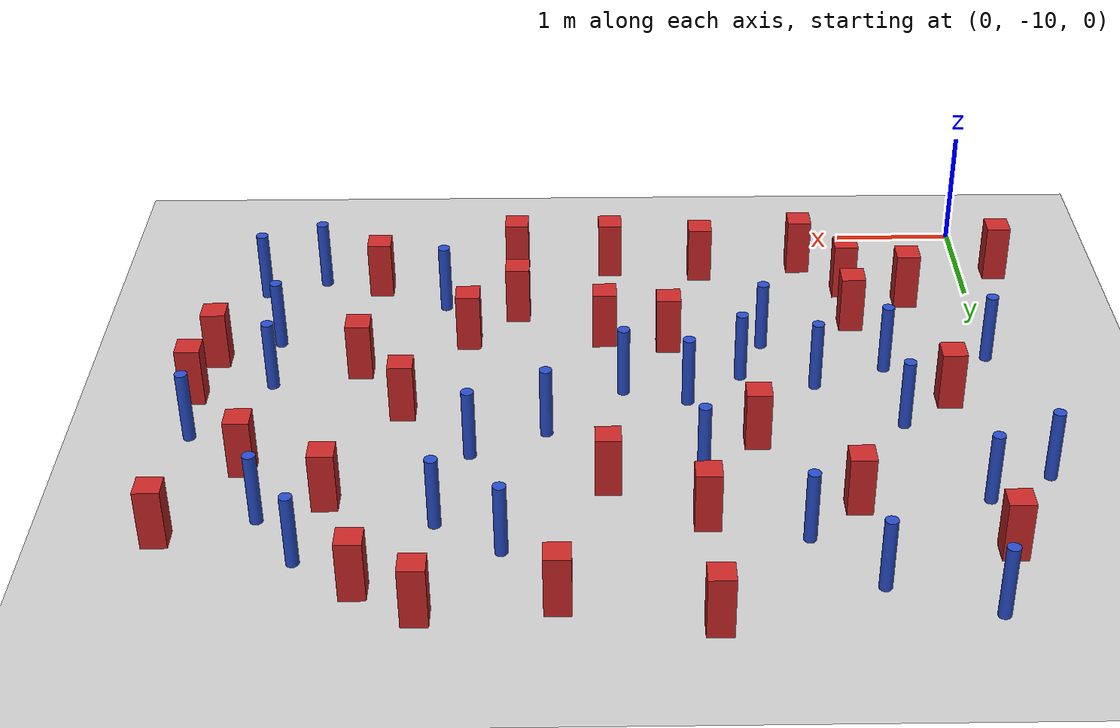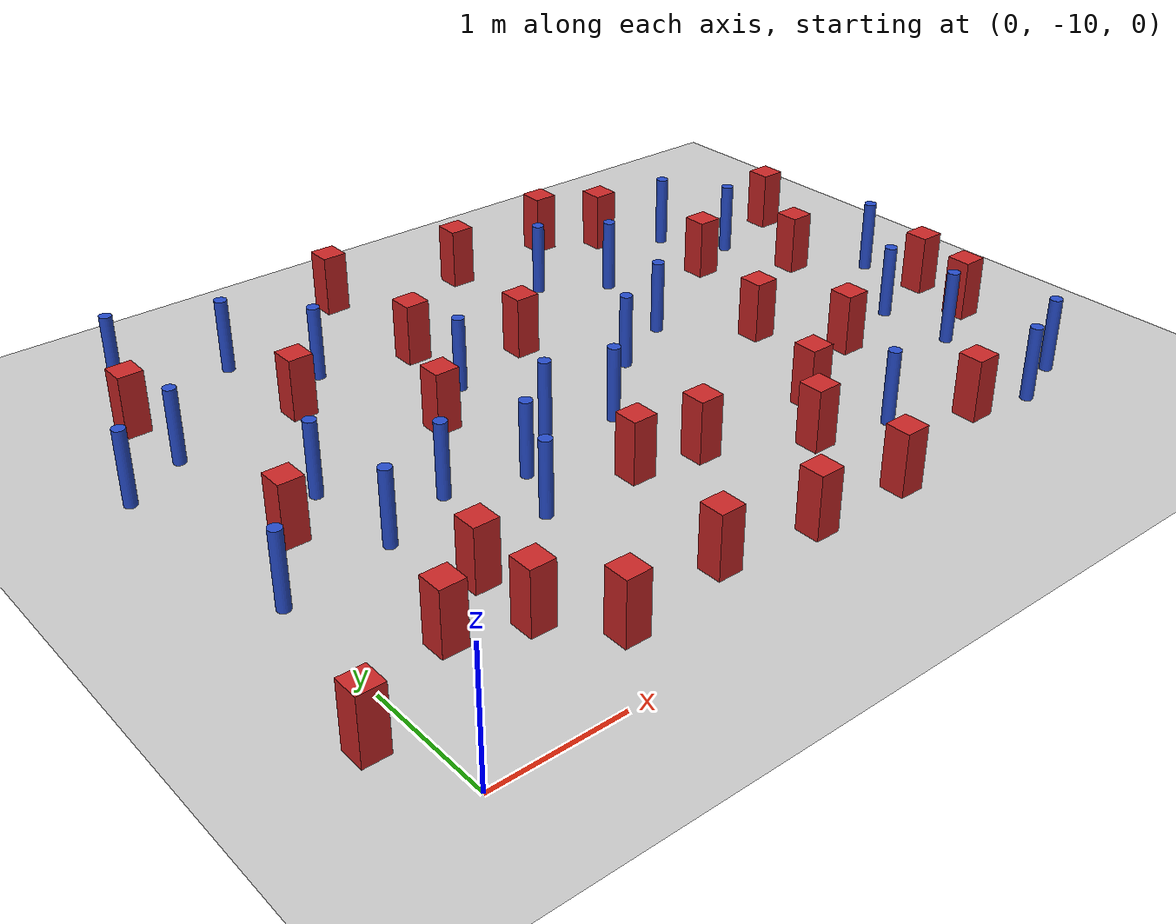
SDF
<sdf version="1.6">
 <world name="default">
  <model name="ground_plane">
   <static>1</static>
   <link name="link">
    <collision name="collision">
     <geometry><plane><normal>0 0 1</normal><size>100 100</size></plane></geometry>
     <surface><friction><ode><mu>100</mu><mu2>50</mu2></ode></friction></surface>
    </collision>
    <visual name="visual">
     <cast_shadows>0</cast_shadows>
     <geometry><plane><normal>0 0 1</normal><size>100 100</size></plane></geometry>
     <material>
      <ambient>1.0 1.0 1.0 1.0</ambient>
      <diffuse>0.8 0.8 0.8 1.0</diffuse>
      <specular>0.01 0.01 0.01 1.000000</specular>
     </material>
    </visual>
   </link>
  </model>
  <model name="square_post_obstacle1">
   <static>true</static>
   <pose>2.44332004762 -5.77742656354 1.91545236811e-07 -7.35059704564e-06 1.12565212e-07 2.39332434364e-05</pose>
   <link name="link">
    <pose>0 0 0.25 0 -0 0</pose>
    <inertial>
     <mass>100</mass>
     <inertia>
      <ixx>0.166667</ixx>
      <ixy>0</ixy>
      <ixz>0</ixz>
      <iyy>0.166667</iyy>
      <iyz>0</iyz>
      <izz>0.166667</izz>
     </inertia>
    </inertial>
    <collision name="collision"><geometry><box><size>.2 .2 .5</size></box></geometry></collision>
    <visual name="visual">
     <geometry><box><size>.2 .2 .5</size></box></geometry>
     <material>
      <script><name>Gazebo/Red</name><uri>file://media/materials/scripts/gazebo.material</uri></script>
     </material>
    </visual>
   </link>
  </model>
  <model name="pole_obstacle2">
   <static>true</static>
   <pose>5.89130835126 -8.27158519056 7.38925637345e-09 -8.471706928e-08 1.24976765081e-08 -1.74513093015e-07</pose>
   <link name="link">
    <pose>0 0 0.3 0 -0 0</pose>
    <inertial>
     <mass>1</mass>
     <inertia><ixx>0.145833</ixx><ixy>0</ixy><ixz>0</ixz><iyy>0.145833</iyy><iyz>0</iyz><izz>0.125</izz></inertia>
    </inertial>
    <collision name="collision">
     <geometry><cylinder><radius>0.05</radius><length>.6</length></cylinder></geometry>
    </collision>
    <visual name="visual">
     <geometry><cylinder><radius>0.05</radius><length>.6</length></cylinder></geometry>
     <material>
      <script><name>Gazebo/Blue</name><uri>file://media/materials/scripts/gazebo.material</uri></script>
     </material>
    </visual>
   </link>
  </model>
  <model name="pole_obstacle10">
   <static>true</static>
   <pose>5.61337096188 -9.26001587438 7.38925637345e-09 -8.471706928e-08 1.24976765081e-08 -1.74513093015e-07</pose>
   <link name="link">
    <pose>0 0 0.3 0 -0 0</pose>
    <inertial>
     <mass>1</mass>
     <inertia><ixx>0.145833</ixx><ixy>0</ixy><ixz>0</ixz><iyy>0.145833</iyy><iyz>0</iyz><izz>0.125</izz></inertia>
    </inertial>
    <collision name="collision">
     <geometry><cylinder><radius>0.05</radius><length>.6</length></cylinder></geometry>
    </collision>
    <visual name="visual">
     <geometry><cylinder><radius>0.05</radius><length>.6</length></cylinder></geometry>
     <material>
      <script><name>Gazebo/Blue</name><uri>file://media/materials/scripts/gazebo.material</uri></script>
     </material>
    </visual>
   </link>
  </model>
  <model name="pole_obstacle13">
   <static>true</static>
   <pose>4.53332814097 -8.83330238117 7.38925637345e-09 -8.471706928e-08 1.24976765081e-08 -1.74513093015e-07</pose>
   <link name="link">
    <pose>0 0 0.3 0 -0 0</pose>
    <inertial>
     <mass>1</mass>
     <inertia><ixx>0.145833</ixx><ixy>0</ixy><ixz>0</ixz><iyy>0.145833</iyy><iyz>0</iyz><izz>0.125</izz></inertia>
    </inertial>
    <collision name="collision">
     <geometry><cylinder><radius>0.05</radius><length>.6</length></cylinder></geometry>
    </collision>
    <visual name="visual">
     <geometry><cylinder><radius>0.05</radius><length>.6</length></cylinder></geometry>
     <material>
      <script><name>Gazebo/Blue</name><uri>file://media/materials/scripts/gazebo.material</uri></script>
     </material>
    </visual>
   </link>
  </model>
  <model name="pole_obstacle17">
   <static>true</static>
   <pose>5.87889555273 -7.64180327104 7.38925637345e-09 -8.47170692796e-08 1.24976764786e-08 -1.74513093032e-07</pose>
   <link name="link">
    <pose>0 0 0.3 0 -0 0</pose>
    <inertial>
     <mass>1</mass>
     <inertia><ixx>0.145833</ixx><ixy>0</ixy><ixz>0</ixz><iyy>0.145833</iyy><iyz>0</iyz><izz>0.125</izz></inertia>
    </inertial>
    <collision name="collision">
     <geometry><cylinder><radius>0.05</radius><length>.6</length></cylinder></geometry>
    </collision>
    <visual name="visual">
     <geometry><cylinder><radius>0.05</radius><length>.6</length></cylinder></geometry>
     <material>
      <script><name>Gazebo/Blue</name><uri>file://media/materials/scripts/gazebo.material</uri></script>
     </material>
    </visual>
   </link>
  </model>
  <model name="square_post_obstacle13">
   <static>true</static>
   <pose>1.07421330765 -9.05741872693 1.91545236811e-07 -7.35059704564e-06 1.12565212e-07 2.39332434364e-05</pose>
   <link name="link">
    <pose>0 0 0.25 0 -0 0</pose>
    <inertial>
     <mass>100</mass>
     <inertia>
      <ixx>0.166667</ixx>
      <ixy>0</ixy>
      <ixz>0</ixz>
      <iyy>0.166667</iyy>
      <iyz>0</iyz>
      <izz>0.166667</izz>
     </inertia>
    </inertial>
    <collision name="collision"><geometry><box><size>.2 .2 .5</size></box></geometry></collision>
    <visual name="visual">
     <geometry><box><size>.2 .2 .5</size></box></geometry>
     <material>
      <script><name>Gazebo/Red</name><uri>file://media/materials/scripts/gazebo.material</uri></script>
     </material>
    </visual>
   </link>
  </model>
  <model name="pole_obstacle26">
   <static>true</static>
   <pose>1.86040906656 -8.18872032764 7.38925637345e-09 -8.47170692798e-08 1.24976764881e-08 -1.74513093027e-07</pose>
   <link name="link">
    <pose>0 0 0.3 0 -0 0</pose>
    <inertial>
     <mass>1</mass>
     <inertia><ixx>0.145833</ixx><ixy>0</ixy><ixz>0</ixz><iyy>0.145833</iyy><iyz>0</iyz><izz>0.125</izz></inertia>
    </inertial>
    <collision name="collision">
     <geometry><cylinder><radius>0.05</radius><length>.6</length></cylinder></geometry>
    </collision>
    <visual name="visual">
     <geometry><cylinder><radius>0.05</radius><length>.6</length></cylinder></geometry>
     <material>
      <script><name>Gazebo/Blue</name><uri>file://media/materials/scripts/gazebo.material</uri></script>
     </material>
    </visual>
   </link>
  </model>
  <model name="square_post_obstacle21">
   <static>true</static>
   <pose>3.11207192009 -9.45377130004 1.91545236811e-07 -7.35059704564e-06 1.12565212e-07 2.39332434364e-05</pose>
   <link name="link">
    <pose>0 0 0.25 0 -0 0</pose>
    <inertial>
     <mass>100</mass>
     <inertia>
      <ixx>0.166667</ixx>
      <ixy>0</ixy>
      <ixz>0</ixz>
      <iyy>0.166667</iyy>
      <iyz>0</iyz>
      <izz>0.166667</izz>
     </inertia>
    </inertial>
    <collision name="collision"><geometry><box><size>.2 .2 .5</size></box></geometry></collision>
    <visual name="visual">
     <geometry><box><size>.2 .2 .5</size></box></geometry>
     <material>
      <script><name>Gazebo/Red</name><uri>file://media/materials/scripts/gazebo.material</uri></script>
     </material>
    </visual>
   </link>
  </model>
  <model name="square_post_obstacle25">
   <static>true</static>
   <pose>6.49063639921 -7.48310181676 1.91545236811e-07 -7.35059704564e-06 1.12565212e-07 2.39332434364e-05</pose>
   <link name="link">
    <pose>0 0 0.25 0 -0 0</pose>
    <inertial>
     <mass>100</mass>
     <inertia>
      <ixx>0.166667</ixx>
      <ixy>0</ixy>
      <ixz>0</ixz>
      <iyy>0.166667</iyy>
      <iyz>0</iyz>
      <izz>0.166667</izz>
     </inertia>
    </inertial>
    <collision name="collision"><geometry><box><size>.2 .2 .5</size></box></geometry></collision>
    <visual name="visual">
     <geometry><box><size>.2 .2 .5</size></box></geometry>
     <material>
      <script><name>Gazebo/Red</name><uri>file://media/materials/scripts/gazebo.material</uri></script>
     </material>
    </visual>
   </link>
  </model>
  <model name="pole_obstacle40">
   <static>true</static>
   <pose>2.06653195669 -7.71471852667 7.38925637345e-09 -8.47170692798e-08 1.24976765033e-08 -1.74513093019e-07</pose>
   <link name="link">
    <pose>0 0 0.3 0 -0 0</pose>
    <inertial>
     <mass>1</mass>
     <inertia><ixx>0.145833</ixx><ixy>0</ixy><ixz>0</ixz><iyy>0.145833</iyy><iyz>0</iyz><izz>0.125</izz></inertia>
    </inertial>
    <collision name="collision">
     <geometry><cylinder><radius>0.05</radius><length>.6</length></cylinder></geometry>
    </collision>
    <visual name="visual">
     <geometry><cylinder><radius>0.05</radius><length>.6</length></cylinder></geometry>
     <material>
      <script><name>Gazebo/Blue</name><uri>file://media/materials/scripts/gazebo.material</uri></script>
     </material>
    </visual>
   </link>
  </model>
  <model name="pole_obstacle42">
   <static>true</static>
   <pose>3.0273202631 -7.51166690474 7.38925637345e-09 -8.47170692798e-08 1.24976765033e-08 -1.74513093019e-07</pose>
   <link name="link">
    <pose>0 0 0.3 0 -0 0</pose>
    <inertial>
     <mass>1</mass>
     <inertia><ixx>0.145833</ixx><ixy>0</ixy><ixz>0</ixz><iyy>0.145833</iyy><iyz>0</iyz><izz>0.125</izz></inertia>
    </inertial>
    <collision name="collision">
     <geometry><cylinder><radius>0.05</radius><length>.6</length></cylinder></geometry>
    </collision>
    <visual name="visual">
     <geometry><cylinder><radius>0.05</radius><length>.6</length></cylinder></geometry>
     <material>
      <script><name>Gazebo/Blue</name><uri>file://media/materials/scripts/gazebo.material</uri></script>
     </material>
    </visual>
   </link>
  </model>
  <model name="square_post_obstacle33">
   <static>true</static>
   <pose>0.250139430183 -5.40766155754 1.91545236811e-07 -7.35059704564e-06 1.12565212e-07 2.39332434364e-05</pose>
   <link name="link">
    <pose>0 0 0.25 0 -0 0</pose>
    <inertial>
     <mass>100</mass>
     <inertia>
      <ixx>0.166667</ixx>
      <ixy>0</ixy>
      <ixz>0</ixz>
      <iyy>0.166667</iyy>
      <iyz>0</iyz>
      <izz>0.166667</izz>
     </inertia>
    </inertial>
    <collision name="collision"><geometry><box><size>.2 .2 .5</size></box></geometry></collision>
    <visual name="visual">
     <geometry><box><size>.2 .2 .5</size></box></geometry>
     <material>
      <script><name>Gazebo/Red</name><uri>file://media/materials/scripts/gazebo.material</uri></script>
     </material>
    </visual>
   </link>
  </model>
  <model name="pole_obstacle54">
   <static>true</static>
   <pose>0.812521267491 -7.00586580138 7.38925637345e-09 -8.471706928e-08 1.24976765086e-08 -1.74513093015e-07</pose>
   <link name="link">
    <pose>0 0 0.3 0 -0 0</pose>
    <inertial>
     <mass>1</mass>
     <inertia><ixx>0.145833</ixx><ixy>0</ixy><ixz>0</ixz><iyy>0.145833</iyy><iyz>0</iyz><izz>0.125</izz></inertia>
    </inertial>
    <collision name="collision">
     <geometry><cylinder><radius>0.05</radius><length>.6</length></cylinder></geometry>
    </collision>
    <visual name="visual">
     <geometry><cylinder><radius>0.05</radius><length>.6</length></cylinder></geometry>
     <material>
      <script><name>Gazebo/Blue</name><uri>file://media/materials/scripts/gazebo.material</uri></script>
     </material>
    </visual>
   </link>
  </model>
  <model name="square_post_obstacle42">
   <static>true</static>
   <pose>2.32215582616 -9.36101462521 1.91545236811e-07 -7.35059704564e-06 1.12565212e-07 2.39332434364e-05</pose>
   <link name="link">
    <pose>0 0 0.25 0 -0 0</pose>
    <inertial>
     <mass>100</mass>
     <inertia>
      <ixx>0.166667</ixx>
      <ixy>0</ixy>
      <ixz>0</ixz>
      <iyy>0.166667</iyy>
      <iyz>0</iyz>
      <izz>0.166667</izz>
     </inertia>
    </inertial>
    <collision name="collision"><geometry><box><size>.2 .2 .5</size></box></geometry></collision>
    <visual name="visual">
     <geometry><box><size>.2 .2 .5</size></box></geometry>
     <material>
      <script><name>Gazebo/Red</name><uri>file://media/materials/scripts/gazebo.material</uri></script>
     </material>
    </visual>
   </link>
  </model>
  <model name="square_post_obstacle48">
   <static>true</static>
   <pose>5.27937939979 -6.06020706355 1.91545236811e-07 -7.35059704564e-06 1.12565212e-07 2.39332434364e-05</pose>
   <link name="link">
    <pose>0 0 0.25 0 -0 0</pose>
    <inertial>
     <mass>100</mass>
     <inertia>
      <ixx>0.166667</ixx>
      <ixy>0</ixy>
      <ixz>0</ixz>
      <iyy>0.166667</iyy>
      <iyz>0</iyz>
      <izz>0.166667</izz>
     </inertia>
    </inertial>
    <collision name="collision"><geometry><box><size>.2 .2 .5</size></box></geometry></collision>
    <visual name="visual">
     <geometry><box><size>.2 .2 .5</size></box></geometry>
     <material>
      <script><name>Gazebo/Red</name><uri>file://media/materials/scripts/gazebo.material</uri></script>
     </material>
    </visual>
   </link>
  </model>
  <model name="pole_obstacle67">
   <static>true</static>
   <pose>2.43581807558 -6.42294973094 7.38925637345e-09 -8.47170692798e-08 1.24976765033e-08 -1.74513093019e-07</pose>
   <link name="link">
    <pose>0 0 0.3 0 -0 0</pose>
    <inertial>
     <mass>1</mass>
     <inertia><ixx>0.145833</ixx><ixy>0</ixy><ixz>0</ixz><iyy>0.145833</iyy><iyz>0</iyz><izz>0.125</izz></inertia>
    </inertial>
    <collision name="collision">
     <geometry><cylinder><radius>0.05</radius><length>.6</length></cylinder></geometry>
    </collision>
    <visual name="visual">
     <geometry><cylinder><radius>0.05</radius><length>.6</length></cylinder></geometry>
     <material>
      <script><name>Gazebo/Blue</name><uri>file://media/materials/scripts/gazebo.material</uri></script>
     </material>
    </visual>
   </link>
  </model>
  <model name="square_post_obstacle52">
   <static>true</static>
   <pose>2.42259912128 -4.6182047108 1.91545236811e-07 -7.35059704564e-06 1.12565212e-07 2.39332434364e-05</pose>
   <link name="link">
    <pose>0 0 0.25 0 -0 0</pose>
    <inertial>
     <mass>100</mass>
     <inertia>
      <ixx>0.166667</ixx>
      <ixy>0</ixy>
      <ixz>0</ixz>
      <iyy>0.166667</iyy>
      <iyz>0</iyz>
      <izz>0.166667</izz>
     </inertia>
    </inertial>
    <collision name="collision"><geometry><box><size>.2 .2 .5</size></box></geometry></collision>
    <visual name="visual">
     <geometry><box><size>.2 .2 .5</size></box></geometry>
     <material>
      <script><name>Gazebo/Red</name><uri>file://media/materials/scripts/gazebo.material</uri></script>
     </material>
    </visual>
   </link>
  </model>
  <model name="square_post_obstacle58">
   <static>true</static>
   <pose>3.53542151933 -4.85251000355 1.91545236811e-07 -7.35059704564e-06 1.12565212e-07 2.39332434364e-05</pose>
   <link name="link">
    <pose>0 0 0.25 0 -0 0</pose>
    <inertial>
     <mass>100</mass>
     <inertia>
      <ixx>0.166667</ixx>
      <ixy>0</ixy>
      <ixz>0</ixz>
      <iyy>0.166667</iyy>
      <iyz>0</iyz>
      <izz>0.166667</izz>
     </inertia>
    </inertial>
    <collision name="collision"><geometry><box><size>.2 .2 .5</size></box></geometry></collision>
    <visual name="visual">
     <geometry><box><size>.2 .2 .5</size></box></geometry>
     <material>
      <script><name>Gazebo/Red</name><uri>file://media/materials/scripts/gazebo.material</uri></script>
     </material>
    </visual>
   </link>
  </model>
  <model name="square_post_obstacle67">
   <static>true</static>
   <pose>1.30555564106 -5.95571007916 1.91545236811e-07 -7.35059704564e-06 1.12565212e-07 2.39332434364e-05</pose>
   <link name="link">
    <pose>0 0 0.25 0 -0 0</pose>
    <inertial>
     <mass>100</mass>
     <inertia>
      <ixx>0.166667</ixx>
      <ixy>0</ixy>
      <ixz>0</ixz>
      <iyy>0.166667</iyy>
      <iyz>0</iyz>
      <izz>0.166667</izz>
     </inertia>
    </inertial>
    <collision name="collision"><geometry><box><size>.2 .2 .5</size></box></geometry></collision>
    <visual name="visual">
     <geometry><box><size>.2 .2 .5</size></box></geometry>
     <material>
      <script><name>Gazebo/Red</name><uri>file://media/materials/scripts/gazebo.material</uri></script>
     </material>
    </visual>
   </link>
  </model>
  <model name="square_post_obstacle71">
   <static>true</static>
   <pose>5.95813016792 -6.49555553379 1.91545236811e-07 -7.35059704564e-06 1.12565212e-07 2.39332434364e-05</pose>
   <link name="link">
    <pose>0 0 0.25 0 -0 0</pose>
    <inertial>
     <mass>100</mass>
     <inertia>
      <ixx>0.166667</ixx>
      <ixy>0</ixy>
      <ixz>0</ixz>
      <iyy>0.166667</iyy>
      <iyz>0</iyz>
      <izz>0.166667</izz>
     </inertia>
    </inertial>
    <collision name="collision"><geometry><box><size>.2 .2 .5</size></box></geometry></collision>
    <visual name="visual">
     <geometry><box><size>.2 .2 .5</size></box></geometry>
     <material>
      <script><name>Gazebo/Red</name><uri>file://media/materials/scripts/gazebo.material</uri></script>
     </material>
    </visual>
   </link>
  </model>
  <model name="square_post_obstacle77">
   <static>true</static>
   <pose>3.1686634257 -6.22431450866 1.91545236811e-07 -7.35059704564e-06 1.12565212e-07 2.39332434364e-05</pose>
   <link name="link">
    <pose>0 0 0.25 0 -0 0</pose>
    <inertial>
     <mass>100</mass>
     <inertia>
      <ixx>0.166667</ixx>
      <ixy>0</ixy>
      <ixz>0</ixz>
      <iyy>0.166667</iyy>
      <iyz>0</iyz>
      <izz>0.166667</izz>
     </inertia>
    </inertial>
    <collision name="collision"><geometry><box><size>.2 .2 .5</size></box></geometry></collision>
    <visual name="visual">
     <geometry><box><size>.2 .2 .5</size></box></geometry>
     <material>
      <script><name>Gazebo/Red</name><uri>file://media/materials/scripts/gazebo.material</uri></script>
     </material>
    </visual>
   </link>
  </model>
  <model name="square_post_obstacle88">
   <static>true</static>
   <pose>1.99874366573 -6.79886530603 1.91545236811e-07 -7.35059704564e-06 1.12565212e-07 2.39332434364e-05</pose>
   <link name="link">
    <pose>0 0 0.25 0 -0 0</pose>
    <inertial>
     <mass>100</mass>
     <inertia>
      <ixx>0.166667</ixx>
      <ixy>0</ixy>
      <ixz>0</ixz>
      <iyy>0.166667</iyy>
      <iyz>0</iyz>
      <izz>0.166667</izz>
     </inertia>
    </inertial>
    <collision name="collision"><geometry><box><size>.2 .2 .5</size></box></geometry></collision>
    <visual name="visual">
     <geometry><box><size>.2 .2 .5</size></box></geometry>
     <material>
      <script><name>Gazebo/Red</name><uri>file://media/materials/scripts/gazebo.material</uri></script>
     </material>
    </visual>
   </link>
  </model>
  <model name="square_post_obstacle94">
   <static>true</static>
   <pose>4.52158592884 -4.74917829867 1.91545236811e-07 -7.35059704564e-06 1.12565212e-07 2.39332434364e-05</pose>
   <link name="link">
    <pose>0 0 0.25 0 -0 0</pose>
    <inertial>
     <mass>100</mass>
     <inertia>
      <ixx>0.166667</ixx>
      <ixy>0</ixy>
      <ixz>0</ixz>
      <iyy>0.166667</iyy>
      <iyz>0</iyz>
      <izz>0.166667</izz>
     </inertia>
    </inertial>
    <collision name="collision"><geometry><box><size>.2 .2 .5</size></box></geometry></collision>
    <visual name="visual">
     <geometry><box><size>.2 .2 .5</size></box></geometry>
     <material>
      <script><name>Gazebo/Red</name><uri>file://media/materials/scripts/gazebo.material</uri></script>
     </material>
    </visual>
   </link>
  </model>
  <model name="square_post_obstacle102">
   <static>true</static>
   <pose>2.64087582578 -8.19251139372 1.91545236811e-07 -7.35059704564e-06 1.12565212e-07 2.39332434364e-05</pose>
   <link name="link">
    <pose>0 0 0.25 0 -0 0</pose>
    <inertial>
     <mass>100</mass>
     <inertia>
      <ixx>0.166667</ixx>
      <ixy>0</ixy>
      <ixz>0</ixz>
      <iyy>0.166667</iyy>
      <iyz>0</iyz>
      <izz>0.166667</izz>
     </inertia>
    </inertial>
    <collision name="collision"><geometry><box><size>.2 .2 .5</size></box></geometry></collision>
    <visual name="visual">
     <geometry><box><size>.2 .2 .5</size></box></geometry>
     <material>
      <script><name>Gazebo/Red</name><uri>file://media/materials/scripts/gazebo.material</uri></script>
     </material>
    </visual>
   </link>
  </model>
  <model name="pole_obstacle114">
   <static>true</static>
   <pose>3.94965584927 -5.46276522362 7.38925637345e-09 -8.47170692798e-08 1.24976765033e-08 -1.74513093019e-07</pose>
   <link name="link">
    <pose>0 0 0.3 0 -0 0</pose>
    <inertial>
     <mass>1</mass>
     <inertia><ixx>0.145833</ixx><ixy>0</ixy><ixz>0</ixz><iyy>0.145833</iyy><iyz>0</iyz><izz>0.125</izz></inertia>
    </inertial>
    <collision name="collision">
     <geometry><cylinder><radius>0.05</radius><length>.6</length></cylinder></geometry>
    </collision>
    <visual name="visual">
     <geometry><cylinder><radius>0.05</radius><length>.6</length></cylinder></geometry>
     <material>
      <script><name>Gazebo/Blue</name><uri>file://media/materials/scripts/gazebo.material</uri></script>
     </material>
    </visual>
   </link>
  </model>
  <model name="square_post_obstacle112">
   <static>true</static>
   <pose>0.411854652274 -7.33695188402 1.91545236811e-07 -7.35059704564e-06 1.12565212e-07 2.39332434364e-05</pose>
   <link name="link">
    <pose>0 0 0.25 0 -0 0</pose>
    <inertial>
     <mass>100</mass>
     <inertia>
      <ixx>0.166667</ixx>
      <ixy>0</ixy>
      <ixz>0</ixz>
      <iyy>0.166667</iyy>
      <iyz>0</iyz>
      <izz>0.166667</izz>
     </inertia>
    </inertial>
    <collision name="collision"><geometry><box><size>.2 .2 .5</size></box></geometry></collision>
    <visual name="visual">
     <geometry><box><size>.2 .2 .5</size></box></geometry>
     <material>
      <script><name>Gazebo/Red</name><uri>file://media/materials/scripts/gazebo.material</uri></script>
     </material>
    </visual>
   </link>
  </model>
  <model name="square_post_obstacle116">
   <static>true</static>
   <pose>-0.29876156868 -9.34951878861 1.91545236811e-07 -7.35059704564e-06 1.12565212e-07 2.39332434364e-05</pose>
   <link name="link">
    <pose>0 0 0.25 0 -0 0</pose>
    <inertial>
     <mass>100</mass>
     <inertia>
      <ixx>0.166667</ixx>
      <ixy>0</ixy>
      <ixz>0</ixz>
      <iyy>0.166667</iyy>
      <iyz>0</iyz>
      <izz>0.166667</izz>
     </inertia>
    </inertial>
    <collision name="collision"><geometry><box><size>.2 .2 .5</size></box></geometry></collision>
    <visual name="visual">
     <geometry><box><size>.2 .2 .5</size></box></geometry>
     <material>
      <script><name>Gazebo/Red</name><uri>file://media/materials/scripts/gazebo.material</uri></script>
     </material>
    </visual>
   </link>
  </model>
  <model name="square_post_obstacle117">
   <static>true</static>
   <pose>3.90605880297 -8.70025038492 1.91545236811e-07 -7.35059704564e-06 1.12565212e-07 2.39332434364e-05</pose>
   <link name="link">
    <pose>0 0 0.25 0 -0 0</pose>
    <inertial>
     <mass>100</mass>
     <inertia>
      <ixx>0.166667</ixx>
      <ixy>0</ixy>
      <ixz>0</ixz>
      <iyy>0.166667</iyy>
      <iyz>0</iyz>
      <izz>0.166667</izz>
     </inertia>
    </inertial>
    <collision name="collision"><geometry><box><size>.2 .2 .5</size></box></geometry></collision>
    <visual name="visual">
     <geometry><box><size>.2 .2 .5</size></box></geometry>
     <material>
      <script><name>Gazebo/Red</name><uri>file://media/materials/scripts/gazebo.material</uri></script>
     </material>
    </visual>
   </link>
  </model>
  <model name="square_post_obstacle120">
   <static>true</static>
   <pose>4.30743001677 -8.26737714747 1.91545236811e-07 -7.35059704564e-06 1.12565212e-07 2.39332434364e-05</pose>
   <link name="link">
    <pose>0 0 0.25 0 -0 0</pose>
    <inertial>
     <mass>100</mass>
     <inertia>
      <ixx>0.166667</ixx>
      <ixy>0</ixy>
      <ixz>0</ixz>
      <iyy>0.166667</iyy>
      <iyz>0</iyz>
      <izz>0.166667</izz>
     </inertia>
    </inertial>
    <collision name="collision"><geometry><box><size>.2 .2 .5</size></box></geometry></collision>
    <visual name="visual">
     <geometry><box><size>.2 .2 .5</size></box></geometry>
     <material>
      <script><name>Gazebo/Red</name><uri>file://media/materials/scripts/gazebo.material</uri></script>
     </material>
    </visual>
   </link>
  </model>
  <model name="pole_obstacle119">
   <static>true</static>
   <pose>1.22640419659 -5.03091344331 7.38925637345e-09 -8.47170692799e-08 1.24976765033e-08 -1.74513093018e-07</pose>
   <link name="link">
    <pose>0 0 0.3 0 -0 0</pose>
    <inertial>
     <mass>1</mass>
     <inertia><ixx>0.145833</ixx><ixy>0</ixy><ixz>0</ixz><iyy>0.145833</iyy><iyz>0</iyz><izz>0.125</izz></inertia>
    </inertial>
    <collision name="collision">
     <geometry><cylinder><radius>0.05</radius><length>.6</length></cylinder></geometry>
    </collision>
    <visual name="visual">
     <geometry><cylinder><radius>0.05</radius><length>.6</length></cylinder></geometry>
     <material>
      <script><name>Gazebo/Blue</name><uri>file://media/materials/scripts/gazebo.material</uri></script>
     </material>
    </visual>
   </link>
  </model>
  <model name="pole_obstacle123">
   <static>true</static>
   <pose>5.44349655192 -5.36108400999 7.38925637345e-09 -8.47170692796e-08 1.24976764786e-08 -1.74513093032e-07</pose>
   <link name="link">
    <pose>0 0 0.3 0 -0 0</pose>
    <inertial>
     <mass>1</mass>
     <inertia><ixx>0.145833</ixx><ixy>0</ixy><ixz>0</ixz><iyy>0.145833</iyy><iyz>0</iyz><izz>0.125</izz></inertia>
    </inertial>
    <collision name="collision">
     <geometry><cylinder><radius>0.05</radius><length>.6</length></cylinder></geometry>
    </collision>
    <visual name="visual">
     <geometry><cylinder><radius>0.05</radius><length>.6</length></cylinder></geometry>
     <material>
      <script><name>Gazebo/Blue</name><uri>file://media/materials/scripts/gazebo.material</uri></script>
     </material>
    </visual>
   </link>
  </model>
  <model name="pole_obstacle126">
   <static>true</static>
   <pose>3.64232898353 -6.93844682564 7.38925637345e-09 -8.47170692798e-08 1.24976765033e-08 -1.74513093019e-07</pose>
   <link name="link">
    <pose>0 0 0.3 0 -0 0</pose>
    <inertial>
     <mass>1</mass>
     <inertia><ixx>0.145833</ixx><ixy>0</ixy><ixz>0</ixz><iyy>0.145833</iyy><iyz>0</iyz><izz>0.125</izz></inertia>
    </inertial>
    <collision name="collision">
     <geometry><cylinder><radius>0.05</radius><length>.6</length></cylinder></geometry>
    </collision>
    <visual name="visual">
     <geometry><cylinder><radius>0.05</radius><length>.6</length></cylinder></geometry>
     <material>
      <script><name>Gazebo/Blue</name><uri>file://media/materials/scripts/gazebo.material</uri></script>
     </material>
    </visual>
   </link>
  </model>
  <model name="square_post_obstacle124">
   <static>true</static>
   <pose>4.78871846745 -7.22456897996 1.91545236811e-07 -7.35059704564e-06 1.12565212e-07 2.39332434364e-05</pose>
   <link name="link">
    <pose>0 0 0.25 0 -0 0</pose>
    <inertial>
     <mass>100</mass>
     <inertia>
      <ixx>0.166667</ixx>
      <ixy>0</ixy>
      <ixz>0</ixz>
      <iyy>0.166667</iyy>
      <iyz>0</iyz>
      <izz>0.166667</izz>
     </inertia>
    </inertial>
    <collision name="collision"><geometry><box><size>.2 .2 .5</size></box></geometry></collision>
    <visual name="visual">
     <geometry><box><size>.2 .2 .5</size></box></geometry>
     <material>
      <script><name>Gazebo/Red</name><uri>file://media/materials/scripts/gazebo.material</uri></script>
     </material>
    </visual>
   </link>
  </model>
  <model name="pole_obstacle129">
   <static>true</static>
   <pose>1.46745900972 -7.57078377712 7.38925637345e-09 -8.47170692799e-08 1.24976765033e-08 -1.74513093018e-07</pose>
   <link name="link">
    <pose>0 0 0.3 0 -0 0</pose>
    <inertial>
     <mass>1</mass>
     <inertia><ixx>0.145833</ixx><ixy>0</ixy><ixz>0</ixz><iyy>0.145833</iyy><iyz>0</iyz><izz>0.125</izz></inertia>
    </inertial>
    <collision name="collision">
     <geometry><cylinder><radius>0.05</radius><length>.6</length></cylinder></geometry>
    </collision>
    <visual name="visual">
     <geometry><cylinder><radius>0.05</radius><length>.6</length></cylinder></geometry>
     <material>
      <script><name>Gazebo/Blue</name><uri>file://media/materials/scripts/gazebo.material</uri></script>
     </material>
    </visual>
   </link>
  </model>
  <model name="pole_obstacle133">
   <static>true</static>
   <pose>6.11123604635 -9.07128024439 7.38925637345e-09 -8.471706928e-08 1.24976765081e-08 -1.74513093015e-07</pose>
   <link name="link">
    <pose>0 0 0.3 0 -0 0</pose>
    <inertial>
     <mass>1</mass>
     <inertia><ixx>0.145833</ixx><ixy>0</ixy><ixz>0</ixz><iyy>0.145833</iyy><iyz>0</iyz><izz>0.125</izz></inertia>
    </inertial>
    <collision name="collision">
     <geometry><cylinder><radius>0.05</radius><length>.6</length></cylinder></geometry>
    </collision>
    <visual name="visual">
     <geometry><cylinder><radius>0.05</radius><length>.6</length></cylinder></geometry>
     <material>
      <script><name>Gazebo/Blue</name><uri>file://media/materials/scripts/gazebo.material</uri></script>
     </material>
    </visual>
   </link>
  </model>
  <model name="square_post_obstacle137">
   <static>true</static>
   <pose>6.46983649495 -5.6431575562 1.91545236811e-07 -7.35059704564e-06 1.12565212e-07 2.39332434364e-05</pose>
   <link name="link">
    <pose>0 0 0.25 0 -0 0</pose>
    <inertial>
     <mass>100</mass>
     <inertia>
      <ixx>0.166667</ixx>
      <ixy>0</ixy>
      <ixz>0</ixz>
      <iyy>0.166667</iyy>
      <iyz>0</iyz>
      <izz>0.166667</izz>
     </inertia>
    </inertial>
    <collision name="collision"><geometry><box><size>.2 .2 .5</size></box></geometry></collision>
    <visual name="visual">
     <geometry><box><size>.2 .2 .5</size></box></geometry>
     <material>
      <script><name>Gazebo/Red</name><uri>file://media/materials/scripts/gazebo.material</uri></script>
     </material>
    </visual>
   </link>
  </model>
  <model name="pole_obstacle144">
   <static>true</static>
   <pose>-0.203947719751 -6.30670873204 7.38925637345e-09 -8.47170692799e-08 1.2497676507e-08 -1.74513093018e-07</pose>
   <link name="link">
    <pose>0 0 0.3 0 -0 0</pose>
    <inertial>
     <mass>1</mass>
     <inertia><ixx>0.145833</ixx><ixy>0</ixy><ixz>0</ixz><iyy>0.145833</iyy><iyz>0</iyz><izz>0.125</izz></inertia>
    </inertial>
    <collision name="collision">
     <geometry><cylinder><radius>0.05</radius><length>.6</length></cylinder></geometry>
    </collision>
    <visual name="visual">
     <geometry><cylinder><radius>0.05</radius><length>.6</length></cylinder></geometry>
     <material>
      <script><name>Gazebo/Blue</name><uri>file://media/materials/scripts/gazebo.material</uri></script>
     </material>
    </visual>
   </link>
  </model>
  <model name="pole_obstacle145">
   <static>true</static>
   <pose>1.70356965938 -5.5818442019 7.38925637345e-09 -8.47170692799e-08 1.24976765033e-08 -1.74513093018e-07</pose>
   <link name="link">
    <pose>0 0 0.3 0 -0 0</pose>
    <inertial>
     <mass>1</mass>
     <inertia><ixx>0.145833</ixx><ixy>0</ixy><ixz>0</ixz><iyy>0.145833</iyy><iyz>0</iyz><izz>0.125</izz></inertia>
    </inertial>
    <collision name="collision">
     <geometry><cylinder><radius>0.05</radius><length>.6</length></cylinder></geometry>
    </collision>
    <visual name="visual">
     <geometry><cylinder><radius>0.05</radius><length>.6</length></cylinder></geometry>
     <material>
      <script><name>Gazebo/Blue</name><uri>file://media/materials/scripts/gazebo.material</uri></script>
     </material>
    </visual>
   </link>
  </model>
  <model name="pole_obstacle152">
   <static>true</static>
   <pose>4.2321710528 -6.6484547192 7.38925637345e-09 -8.47170692796e-08 1.24976764786e-08 -1.74513093032e-07</pose>
   <link name="link">
    <pose>0 0 0.3 0 -0 0</pose>
    <inertial>
     <mass>1</mass>
     <inertia><ixx>0.145833</ixx><ixy>0</ixy><ixz>0</ixz><iyy>0.145833</iyy><iyz>0</iyz><izz>0.125</izz></inertia>
    </inertial>
    <collision name="collision">
     <geometry><cylinder><radius>0.05</radius><length>.6</length></cylinder></geometry>
    </collision>
    <visual name="visual">
     <geometry><cylinder><radius>0.05</radius><length>.6</length></cylinder></geometry>
     <material>
      <script><name>Gazebo/Blue</name><uri>file://media/materials/scripts/gazebo.material</uri></script>
     </material>
    </visual>
   </link>
  </model>
  <model name="square_post_obstacle152">
   <static>true</static>
   <pose>3.92991457035 -9.46814791247 1.91545236811e-07 -7.35059704564e-06 1.12565212e-07 2.39332434364e-05</pose>
   <link name="link">
    <pose>0 0 0.25 0 -0 0</pose>
    <inertial>
     <mass>100</mass>
     <inertia>
      <ixx>0.166667</ixx>
      <ixy>0</ixy>
      <ixz>0</ixz>
      <iyy>0.166667</iyy>
      <iyz>0</iyz>
      <izz>0.166667</izz>
     </inertia>
    </inertial>
    <collision name="collision"><geometry><box><size>.2 .2 .5</size></box></geometry></collision>
    <visual name="visual">
     <geometry><box><size>.2 .2 .5</size></box></geometry>
     <material>
      <script><name>Gazebo/Red</name><uri>file://media/materials/scripts/gazebo.material</uri></script>
     </material>
    </visual>
   </link>
  </model>
  <model name="square_post_obstacle154">
   <static>true</static>
   <pose>5.1112891633 -9.14001642556 1.91545236811e-07 -7.35059704564e-06 1.12565212e-07 2.39332434364e-05</pose>
   <link name="link">
    <pose>0 0 0.25 0 -0 0</pose>
    <inertial>
     <mass>100</mass>
     <inertia>
      <ixx>0.166667</ixx>
      <ixy>0</ixy>
      <ixz>0</ixz>
      <iyy>0.166667</iyy>
      <iyz>0</iyz>
      <izz>0.166667</izz>
     </inertia>
    </inertial>
    <collision name="collision"><geometry><box><size>.2 .2 .5</size></box></geometry></collision>
    <visual name="visual">
     <geometry><box><size>.2 .2 .5</size></box></geometry>
     <material>
      <script><name>Gazebo/Red</name><uri>file://media/materials/scripts/gazebo.material</uri></script>
     </material>
    </visual>
   </link>
  </model>
  <model name="pole_obstacle164">
   <static>true</static>
   <pose>0.440332858112 -4.72355312621 7.38925637345e-09 -8.471706928e-08 1.24976765079e-08 -1.74513093015e-07</pose>
   <link name="link">
    <pose>0 0 0.3 0 -0 0</pose>
    <inertial>
     <mass>1</mass>
     <inertia><ixx>0.145833</ixx><ixy>0</ixy><ixz>0</ixz><iyy>0.145833</iyy><iyz>0</iyz><izz>0.125</izz></inertia>
    </inertial>
    <collision name="collision">
     <geometry><cylinder><radius>0.05</radius><length>.6</length></cylinder></geometry>
    </collision>
    <visual name="visual">
     <geometry><cylinder><radius>0.05</radius><length>.6</length></cylinder></geometry>
     <material>
      <script><name>Gazebo/Blue</name><uri>file://media/materials/scripts/gazebo.material</uri></script>
     </material>
    </visual>
   </link>
  </model>
  <model name="square_post_obstacle157">
   <static>true</static>
   <pose>1.07519510144 -8.50385273176 1.91545236811e-07 -7.35059704564e-06 1.12565212e-07 2.39332434364e-05</pose>
   <link name="link">
    <pose>0 0 0.25 0 -0 0</pose>
    <inertial>
     <mass>100</mass>
     <inertia>
      <ixx>0.166667</ixx>
      <ixy>0</ixy>
      <ixz>0</ixz>
      <iyy>0.166667</iyy>
      <iyz>0</iyz>
      <izz>0.166667</izz>
     </inertia>
    </inertial>
    <collision name="collision"><geometry><box><size>.2 .2 .5</size></box></geometry></collision>
    <visual name="visual">
     <geometry><box><size>.2 .2 .5</size></box></geometry>
     <material>
      <script><name>Gazebo/Red</name><uri>file://media/materials/scripts/gazebo.material</uri></script>
     </material>
    </visual>
   </link>
  </model>
  <model name="pole_obstacle165">
   <static>true</static>
   <pose>0.301638909981 -6.02425453652 7.38925637345e-09 -8.471706928e-08 1.24976765079e-08 -1.74513093015e-07</pose>
   <link name="link">
    <pose>0 0 0.3 0 -0 0</pose>
    <inertial>
     <mass>1</mass>
     <inertia><ixx>0.145833</ixx><ixy>0</ixy><ixz>0</ixz><iyy>0.145833</iyy><iyz>0</iyz><izz>0.125</izz></inertia>
    </inertial>
    <collision name="collision">
     <geometry><cylinder><radius>0.05</radius><length>.6</length></cylinder></geometry>
    </collision>
    <visual name="visual">
     <geometry><cylinder><radius>0.05</radius><length>.6</length></cylinder></geometry>
     <material>
      <script><name>Gazebo/Blue</name><uri>file://media/materials/scripts/gazebo.material</uri></script>
     </material>
    </visual>
   </link>
  </model>
  <model name="square_post_obstacle160">
   <static>true</static>
   <pose>5.17618972998 -7.83115740071 1.91545236811e-07 -7.35059704564e-06 1.12565212e-07 2.39332434364e-05</pose>
   <link name="link">
    <pose>0 0 0.25 0 -0 0</pose>
    <inertial>
     <mass>100</mass>
     <inertia>
      <ixx>0.166667</ixx>
      <ixy>0</ixy>
      <ixz>0</ixz>
      <iyy>0.166667</iyy>
      <iyz>0</iyz>
      <izz>0.166667</izz>
     </inertia>
    </inertial>
    <collision name="collision"><geometry><box><size>.2 .2 .5</size></box></geometry></collision>
    <visual name="visual">
     <geometry><box><size>.2 .2 .5</size></box></geometry>
     <material>
      <script><name>Gazebo/Red</name><uri>file://media/materials/scripts/gazebo.material</uri></script>
     </material>
    </visual>
   </link>
  </model>
  <model name="pole_obstacle166">
   <static>true</static>
   <pose>2.51186749521 -7.357165287 7.38925637345e-09 -8.47170692798e-08 1.24976765033e-08 -1.74513093019e-07</pose>
   <link name="link">
    <pose>0 0 0.3 0 -0 0</pose>
    <inertial>
     <mass>1</mass>
     <inertia><ixx>0.145833</ixx><ixy>0</ixy><ixz>0</ixz><iyy>0.145833</iyy><iyz>0</iyz><izz>0.125</izz></inertia>
    </inertial>
    <collision name="collision">
     <geometry><cylinder><radius>0.05</radius><length>.6</length></cylinder></geometry>
    </collision>
    <visual name="visual">
     <geometry><cylinder><radius>0.05</radius><length>.6</length></cylinder></geometry>
     <material>
      <script><name>Gazebo/Blue</name><uri>file://media/materials/scripts/gazebo.material</uri></script>
     </material>
    </visual>
   </link>
  </model>
  <model name="square_post_obstacle168">
   <static>true</static>
   <pose>3.17239354771 -8.28662848446 1.91545236811e-07 -7.35059704564e-06 1.12565212e-07 2.39332434364e-05</pose>
   <link name="link">
    <pose>0 0 0.25 0 -0 0</pose>
    <inertial>
     <mass>100</mass>
     <inertia>
      <ixx>0.166667</ixx>
      <ixy>0</ixy>
      <ixz>0</ixz>
      <iyy>0.166667</iyy>
      <iyz>0</iyz>
      <izz>0.166667</izz>
     </inertia>
    </inertial>
    <collision name="collision"><geometry><box><size>.2 .2 .5</size></box></geometry></collision>
    <visual name="visual">
     <geometry><box><size>.2 .2 .5</size></box></geometry>
     <material>
      <script><name>Gazebo/Red</name><uri>file://media/materials/scripts/gazebo.material</uri></script>
     </material>
    </visual>
   </link>
  </model>
  <model name="pole_obstacle173">
   <static>true</static>
   <pose>0.00102820438221 -7.96321444761 7.38925637345e-09 -8.47170692799e-08 1.24976765075e-08 -1.74513093016e-07</pose>
   <link name="link">
    <pose>0 0 0.3 0 -0 0</pose>
    <inertial>
     <mass>1</mass>
     <inertia><ixx>0.145833</ixx><ixy>0</ixy><ixz>0</ixz><iyy>0.145833</iyy><iyz>0</iyz><izz>0.125</izz></inertia>
    </inertial>
    <collision name="collision">
     <geometry><cylinder><radius>0.05</radius><length>.6</length></cylinder></geometry>
    </collision>
    <visual name="visual">
     <geometry><cylinder><radius>0.05</radius><length>.6</length></cylinder></geometry>
     <material>
      <script><name>Gazebo/Blue</name><uri>file://media/materials/scripts/gazebo.material</uri></script>
     </material>
    </visual>
   </link>
  </model>
  <model name="square_post_obstacle182">
   <static>true</static>
   <pose>1.43925007769 -9.48813887561 1.91545236811e-07 -7.35059704564e-06 1.12565212e-07 2.39332434364e-05</pose>
   <link name="link">
    <pose>0 0 0.25 0 -0 0</pose>
    <inertial>
     <mass>100</mass>
     <inertia>
      <ixx>0.166667</ixx>
      <ixy>0</ixy>
      <ixz>0</ixz>
      <iyy>0.166667</iyy>
      <iyz>0</iyz>
      <izz>0.166667</izz>
     </inertia>
    </inertial>
    <collision name="collision"><geometry><box><size>.2 .2 .5</size></box></geometry></collision>
    <visual name="visual">
     <geometry><box><size>.2 .2 .5</size></box></geometry>
     <material>
      <script><name>Gazebo/Red</name><uri>file://media/materials/scripts/gazebo.material</uri></script>
     </material>
    </visual>
   </link>
  </model>
  <model name="square_post_obstacle184">
   <static>true</static>
   <pose>4.97623377029 -5.03616782144 1.91545236811e-07 -7.35059704564e-06 1.12565212e-07 2.39332434364e-05</pose>
   <link name="link">
    <pose>0 0 0.25 0 -0 0</pose>
    <inertial>
     <mass>100</mass>
     <inertia>
      <ixx>0.166667</ixx>
      <ixy>0</ixy>
      <ixz>0</ixz>
      <iyy>0.166667</iyy>
      <iyz>0</iyz>
      <izz>0.166667</izz>
     </inertia>
    </inertial>
    <collision name="collision"><geometry><box><size>.2 .2 .5</size></box></geometry></collision>
    <visual name="visual">
     <geometry><box><size>.2 .2 .5</size></box></geometry>
     <material>
      <script><name>Gazebo/Red</name><uri>file://media/materials/scripts/gazebo.material</uri></script>
     </material>
    </visual>
   </link>
  </model>
  <model name="square_post_obstacle185">
   <static>true</static>
   <pose>6.37170045148 -8.02413395523 1.91545236811e-07 -7.35059704564e-06 1.12565212e-07 2.39332434364e-05</pose>
   <link name="link">
    <pose>0 0 0.25 0 -0 0</pose>
    <inertial>
     <mass>100</mass>
     <inertia>
      <ixx>0.166667</ixx>
      <ixy>0</ixy>
      <ixz>0</ixz>
      <iyy>0.166667</iyy>
      <iyz>0</iyz>
      <izz>0.166667</izz>
     </inertia>
    </inertial>
    <collision name="collision"><geometry><box><size>.2 .2 .5</size></box></geometry></collision>
    <visual name="visual">
     <geometry><box><size>.2 .2 .5</size></box></geometry>
     <material>
      <script><name>Gazebo/Red</name><uri>file://media/materials/scripts/gazebo.material</uri></script>
     </material>
    </visual>
   </link>
  </model>
  <model name="square_post_obstacle191">
   <static>true</static>
   <pose>0.559083087291 -8.87914111464 1.91545236811e-07 -7.35059704564e-06 1.12565212e-07 2.39332434364e-05</pose>
   <link name="link">
    <pose>0 0 0.25 0 -0 0</pose>
    <inertial>
     <mass>100</mass>
     <inertia>
      <ixx>0.166667</ixx>
      <ixy>0</ixy>
      <ixz>0</ixz>
      <iyy>0.166667</iyy>
      <iyz>0</iyz>
      <izz>0.166667</izz>
     </inertia>
    </inertial>
    <collision name="collision"><geometry><box><size>.2 .2 .5</size></box></geometry></collision>
    <visual name="visual">
     <geometry><box><size>.2 .2 .5</size></box></geometry>
     <material>
      <script><name>Gazebo/Red</name><uri>file://media/materials/scripts/gazebo.material</uri></script>
     </material>
    </visual>
   </link>
  </model>
  <model name="pole_obstacle187">
   <static>true</static>
   <pose>4.45283870863 -5.78883257904 7.38925637345e-09 -8.47170692796e-08 1.24976764786e-08 -1.74513093032e-07</pose>
   <link name="link">
    <pose>0 0 0.3 0 -0 0</pose>
    <inertial>
     <mass>1</mass>
     <inertia><ixx>0.145833</ixx><ixy>0</ixy><ixz>0</ixz><iyy>0.145833</iyy><iyz>0</iyz><izz>0.125</izz></inertia>
    </inertial>
    <collision name="collision">
     <geometry><cylinder><radius>0.05</radius><length>.6</length></cylinder></geometry>
    </collision>
    <visual name="visual">
     <geometry><cylinder><radius>0.05</radius><length>.6</length></cylinder></geometry>
     <material>
      <script><name>Gazebo/Blue</name><uri>file://media/materials/scripts/gazebo.material</uri></script>
     </material>
    </visual>
   </link>
  </model>
  <model name="pole_obstacle194">
   <static>true</static>
   <pose>6.44349341508 -6.92622271173 7.38925637345e-09 -8.47170692796e-08 1.24976764786e-08 -1.74513093032e-07</pose>
   <link name="link">
    <pose>0 0 0.3 0 -0 0</pose>
    <inertial>
     <mass>1</mass>
     <inertia><ixx>0.145833</ixx><ixy>0</ixy><ixz>0</ixz><iyy>0.145833</iyy><iyz>0</iyz><izz>0.125</izz></inertia>
    </inertial>
    <collision name="collision">
     <geometry><cylinder><radius>0.05</radius><length>.6</length></cylinder></geometry>
    </collision>
    <visual name="visual">
     <geometry><cylinder><radius>0.05</radius><length>.6</length></cylinder></geometry>
     <material>
      <script><name>Gazebo/Blue</name><uri>file://media/materials/scripts/gazebo.material</uri></script>
     </material>
    </visual>
   </link>
  </model>
  <model name="pole_obstacle197">
   <static>true</static>
   <pose>5.77011965514 -5.85660983476 7.38925637345e-09 -8.47170692796e-08 1.24976764786e-08 -1.74513093032e-07</pose>
   <link name="link">
    <pose>0 0 0.3 0 -0 0</pose>
    <inertial>
     <mass>1</mass>
     <inertia><ixx>0.145833</ixx><ixy>0</ixy><ixz>0</ixz><iyy>0.145833</iyy><iyz>0</iyz><izz>0.125</izz></inertia>
    </inertial>
    <collision name="collision">
     <geometry><cylinder><radius>0.05</radius><length>.6</length></cylinder></geometry>
    </collision>
    <visual name="visual">
     <geometry><cylinder><radius>0.05</radius><length>.6</length></cylinder></geometry>
     <material>
      <script><name>Gazebo/Blue</name><uri>file://media/materials/scripts/gazebo.material</uri></script>
     </material>
    </visual>
   </link>
  </model>
  <model name="pole_obstacle204">
   <static>true</static>
   <pose>0.8722585447 -7.81491574121 7.38925637345e-09 -8.471706928e-08 1.24976765086e-08 -1.74513093015e-07</pose>
   <link name="link">
    <pose>0 0 0.3 0 -0 0</pose>
    <inertial>
     <mass>1</mass>
     <inertia><ixx>0.145833</ixx><ixy>0</ixy><ixz>0</ixz><iyy>0.145833</iyy><iyz>0</iyz><izz>0.125</izz></inertia>
    </inertial>
    <collision name="collision">
     <geometry><cylinder><radius>0.05</radius><length>.6</length></cylinder></geometry>
    </collision>
    <visual name="visual">
     <geometry><cylinder><radius>0.05</radius><length>.6</length></cylinder></geometry>
     <material>
      <script><name>Gazebo/Blue</name><uri>file://media/materials/scripts/gazebo.material</uri></script>
     </material>
    </visual>
   </link>
  </model>
 </world>
</sdf>
